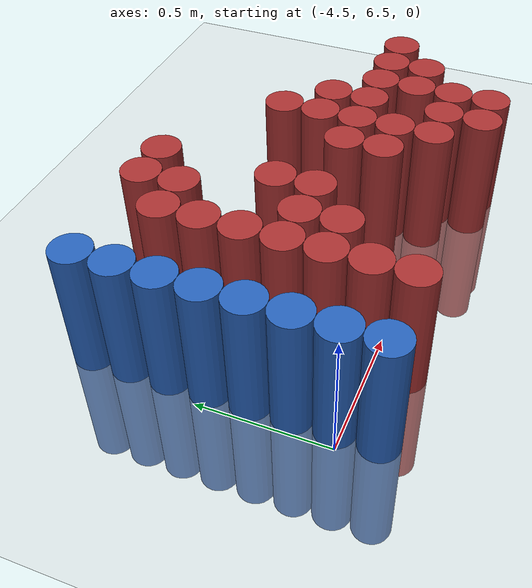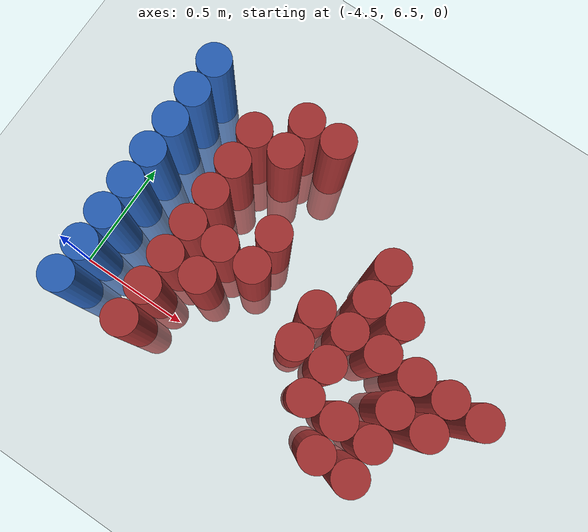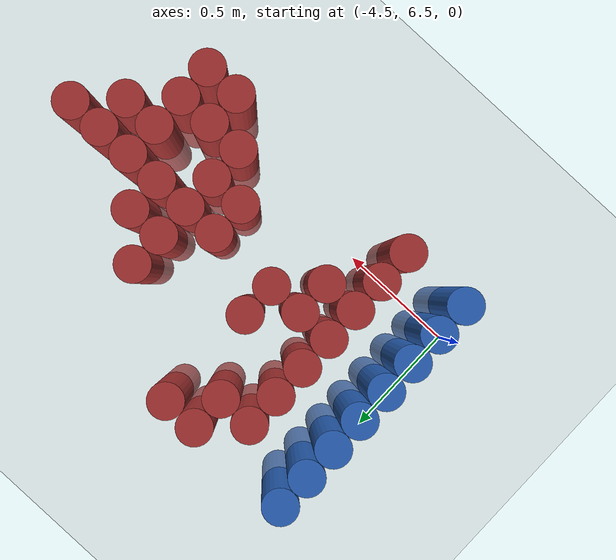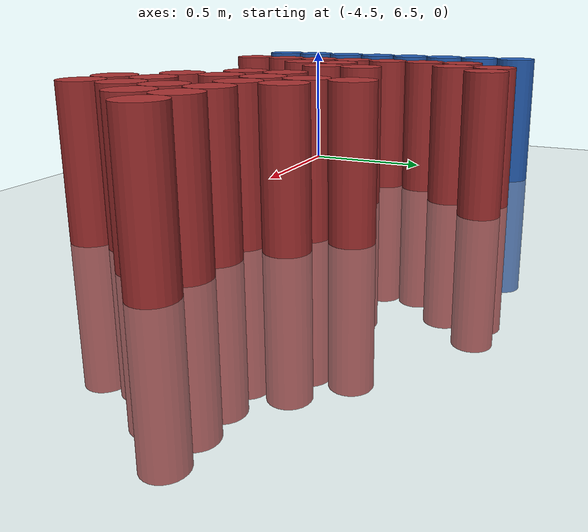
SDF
<sdf version="1.6">
 <world name="default">
  <model name="ground_plane">
   <static>1</static>
   <link name="link">
    <collision name="collision">
     <geometry><plane><normal>0 0 1</normal><size>100 100</size></plane></geometry>
     <surface><friction><ode><mu>100</mu><mu2>50</mu2></ode></friction></surface>
    </collision>
    <visual name="visual">
     <cast_shadows>0</cast_shadows>
     <geometry><plane><normal>0 0 1</normal><size>100 100</size></plane></geometry>
     <material>
      <script><uri>file://media/materials/scripts/gazebo.material</uri><name>Gazebo/Grey</name></script>
     </material>
    </visual>
   </link>
  </model>
  <model name="unit_cylinder_104">
   <static>1</static>
   <pose>-4.425000 6.375000 0.000000 0.000000 0.000000 0.000000</pose>
   <link name="link">
    <inertial>
     <mass>1</mass>
     <inertia><ixx>0.145833</ixx><ixy>0</ixy><ixz>0</ixz><iyy>0.145833</iyy><iyz>0</iyz><izz>0.125</izz></inertia>
    </inertial>
    <collision name="collision">
     <geometry><cylinder><radius>0.075000</radius><length>1</length></cylinder></geometry>
    </collision>
    <visual name="visual">
     <geometry><cylinder><radius>0.075000</radius><length>1</length></cylinder></geometry>
     <material>
      <ambient>0.152000 0.379000 0.720000 1</ambient>
      <diffuse>0.152000 0.379000 0.720000 1</diffuse>
     </material>
     <material>
      <script><name>Gazebo/Grey</name><uri>file://media/materials/scripts/gazebo.material</uri></script>
     </material>
    </visual>
    <sensor name="sensor_contact" type="contact"><contact><collision>collision</collision></contact></sensor>
   </link>
   <plugin filename="gz-sim-touchplugin-system" name="gz::sim::systems::TouchPlugin">
    <target>robot</target>
    <namespace>robot</namespace>
    <time>0.001</time>
    <enabled>true</enabled>
   </plugin>
  </model>
  <model name="unit_cylinder_105">
   <static>1</static>
   <pose>-4.425000 6.525000 0.000000 0.000000 0.000000 0.000000</pose>
   <link name="link">
    <inertial>
     <mass>1</mass>
     <inertia><ixx>0.145833</ixx><ixy>0</ixy><ixz>0</ixz><iyy>0.145833</iyy><iyz>0</iyz><izz>0.125</izz></inertia>
    </inertial>
    <collision name="collision">
     <geometry><cylinder><radius>0.075000</radius><length>1</length></cylinder></geometry>
    </collision>
    <visual name="visual">
     <geometry><cylinder><radius>0.075000</radius><length>1</length></cylinder></geometry>
     <material>
      <ambient>0.152000 0.379000 0.720000 1</ambient>
      <diffuse>0.152000 0.379000 0.720000 1</diffuse>
     </material>
     <material>
      <script><name>Gazebo/Grey</name><uri>file://media/materials/scripts/gazebo.material</uri></script>
     </material>
    </visual>
    <sensor name="sensor_contact" type="contact"><contact><collision>collision</collision></contact></sensor>
   </link>
   <plugin filename="gz-sim-touchplugin-system" name="gz::sim::systems::TouchPlugin">
    <target>robot</target>
    <namespace>robot</namespace>
    <time>0.001</time>
    <enabled>true</enabled>
   </plugin>
  </model>
  <model name="unit_cylinder_106">
   <static>1</static>
   <pose>-4.425000 6.675000 0.000000 0.000000 0.000000 0.000000</pose>
   <link name="link">
    <inertial>
     <mass>1</mass>
     <inertia><ixx>0.145833</ixx><ixy>0</ixy><ixz>0</ixz><iyy>0.145833</iyy><iyz>0</iyz><izz>0.125</izz></inertia>
    </inertial>
    <collision name="collision">
     <geometry><cylinder><radius>0.075000</radius><length>1</length></cylinder></geometry>
    </collision>
    <visual name="visual">
     <geometry><cylinder><radius>0.075000</radius><length>1</length></cylinder></geometry>
     <material>
      <ambient>0.152000 0.379000 0.720000 1</ambient>
      <diffuse>0.152000 0.379000 0.720000 1</diffuse>
     </material>
     <material>
      <script><name>Gazebo/Grey</name><uri>file://media/materials/scripts/gazebo.material</uri></script>
     </material>
    </visual>
    <sensor name="sensor_contact" type="contact"><contact><collision>collision</collision></contact></sensor>
   </link>
   <plugin filename="gz-sim-touchplugin-system" name="gz::sim::systems::TouchPlugin">
    <target>robot</target>
    <namespace>robot</namespace>
    <time>0.001</time>
    <enabled>true</enabled>
   </plugin>
  </model>
  <model name="unit_cylinder_107">
   <static>1</static>
   <pose>-4.425000 6.825000 0.000000 0.000000 0.000000 0.000000</pose>
   <link name="link">
    <inertial>
     <mass>1</mass>
     <inertia><ixx>0.145833</ixx><ixy>0</ixy><ixz>0</ixz><iyy>0.145833</iyy><iyz>0</iyz><izz>0.125</izz></inertia>
    </inertial>
    <collision name="collision">
     <geometry><cylinder><radius>0.075000</radius><length>1</length></cylinder></geometry>
    </collision>
    <visual name="visual">
     <geometry><cylinder><radius>0.075000</radius><length>1</length></cylinder></geometry>
     <material>
      <ambient>0.152000 0.379000 0.720000 1</ambient>
      <diffuse>0.152000 0.379000 0.720000 1</diffuse>
     </material>
     <material>
      <script><name>Gazebo/Grey</name><uri>file://media/materials/scripts/gazebo.material</uri></script>
     </material>
    </visual>
    <sensor name="sensor_contact" type="contact"><contact><collision>collision</collision></contact></sensor>
   </link>
   <plugin filename="gz-sim-touchplugin-system" name="gz::sim::systems::TouchPlugin">
    <target>robot</target>
    <namespace>robot</namespace>
    <time>0.001</time>
    <enabled>true</enabled>
   </plugin>
  </model>
  <model name="unit_cylinder_108">
   <static>1</static>
   <pose>-4.425000 6.975000 0.000000 0.000000 0.000000 0.000000</pose>
   <link name="link">
    <inertial>
     <mass>1</mass>
     <inertia><ixx>0.145833</ixx><ixy>0</ixy><ixz>0</ixz><iyy>0.145833</iyy><iyz>0</iyz><izz>0.125</izz></inertia>
    </inertial>
    <collision name="collision">
     <geometry><cylinder><radius>0.075000</radius><length>1</length></cylinder></geometry>
    </collision>
    <visual name="visual">
     <geometry><cylinder><radius>0.075000</radius><length>1</length></cylinder></geometry>
     <material>
      <ambient>0.152000 0.379000 0.720000 1</ambient>
      <diffuse>0.152000 0.379000 0.720000 1</diffuse>
     </material>
     <material>
      <script><name>Gazebo/Grey</name><uri>file://media/materials/scripts/gazebo.material</uri></script>
     </material>
    </visual>
    <sensor name="sensor_contact" type="contact"><contact><collision>collision</collision></contact></sensor>
   </link>
   <plugin filename="gz-sim-touchplugin-system" name="gz::sim::systems::TouchPlugin">
    <target>robot</target>
    <namespace>robot</namespace>
    <time>0.001</time>
    <enabled>true</enabled>
   </plugin>
  </model>
  <model name="unit_cylinder_109">
   <static>1</static>
   <pose>-4.425000 7.125000 0.000000 0.000000 0.000000 0.000000</pose>
   <link name="link">
    <inertial>
     <mass>1</mass>
     <inertia><ixx>0.145833</ixx><ixy>0</ixy><ixz>0</ixz><iyy>0.145833</iyy><iyz>0</iyz><izz>0.125</izz></inertia>
    </inertial>
    <collision name="collision">
     <geometry><cylinder><radius>0.075000</radius><length>1</length></cylinder></geometry>
    </collision>
    <visual name="visual">
     <geometry><cylinder><radius>0.075000</radius><length>1</length></cylinder></geometry>
     <material>
      <ambient>0.152000 0.379000 0.720000 1</ambient>
      <diffuse>0.152000 0.379000 0.720000 1</diffuse>
     </material>
     <material>
      <script><name>Gazebo/Grey</name><uri>file://media/materials/scripts/gazebo.material</uri></script>
     </material>
    </visual>
    <sensor name="sensor_contact" type="contact"><contact><collision>collision</collision></contact></sensor>
   </link>
   <plugin filename="gz-sim-touchplugin-system" name="gz::sim::systems::TouchPlugin">
    <target>robot</target>
    <namespace>robot</namespace>
    <time>0.001</time>
    <enabled>true</enabled>
   </plugin>
  </model>
  <model name="unit_cylinder_110">
   <static>1</static>
   <pose>-4.425000 7.275000 0.000000 0.000000 0.000000 0.000000</pose>
   <link name="link">
    <inertial>
     <mass>1</mass>
     <inertia><ixx>0.145833</ixx><ixy>0</ixy><ixz>0</ixz><iyy>0.145833</iyy><iyz>0</iyz><izz>0.125</izz></inertia>
    </inertial>
    <collision name="collision">
     <geometry><cylinder><radius>0.075000</radius><length>1</length></cylinder></geometry>
    </collision>
    <visual name="visual">
     <geometry><cylinder><radius>0.075000</radius><length>1</length></cylinder></geometry>
     <material>
      <ambient>0.152000 0.379000 0.720000 1</ambient>
      <diffuse>0.152000 0.379000 0.720000 1</diffuse>
     </material>
     <material>
      <script><name>Gazebo/Grey</name><uri>file://media/materials/scripts/gazebo.material</uri></script>
     </material>
    </visual>
    <sensor name="sensor_contact" type="contact"><contact><collision>collision</collision></contact></sensor>
   </link>
   <plugin filename="gz-sim-touchplugin-system" name="gz::sim::systems::TouchPlugin">
    <target>robot</target>
    <namespace>robot</namespace>
    <time>0.001</time>
    <enabled>true</enabled>
   </plugin>
  </model>
  <model name="unit_cylinder_111">
   <static>1</static>
   <pose>-4.425000 7.425000 0.000000 0.000000 0.000000 0.000000</pose>
   <link name="link">
    <inertial>
     <mass>1</mass>
     <inertia><ixx>0.145833</ixx><ixy>0</ixy><ixz>0</ixz><iyy>0.145833</iyy><iyz>0</iyz><izz>0.125</izz></inertia>
    </inertial>
    <collision name="collision">
     <geometry><cylinder><radius>0.075000</radius><length>1</length></cylinder></geometry>
    </collision>
    <visual name="visual">
     <geometry><cylinder><radius>0.075000</radius><length>1</length></cylinder></geometry>
     <material>
      <ambient>0.152000 0.379000 0.720000 1</ambient>
      <diffuse>0.152000 0.379000 0.720000 1</diffuse>
     </material>
     <material>
      <script><name>Gazebo/Grey</name><uri>file://media/materials/scripts/gazebo.material</uri></script>
     </material>
    </visual>
    <sensor name="sensor_contact" type="contact"><contact><collision>collision</collision></contact></sensor>
   </link>
   <plugin filename="gz-sim-touchplugin-system" name="gz::sim::systems::TouchPlugin">
    <target>robot</target>
    <namespace>robot</namespace>
    <time>0.001</time>
    <enabled>true</enabled>
   </plugin>
  </model>
  <model name="unit_cylinder_138">
   <static>1</static>
   <pose>-4.125000 6.375000 0.000000 0.000000 0.000000 0.000000</pose>
   <link name="link">
    <inertial>
     <mass>1</mass>
     <inertia><ixx>0.145833</ixx><ixy>0</ixy><ixz>0</ixz><iyy>0.145833</iyy><iyz>0</iyz><izz>0.125</izz></inertia>
    </inertial>
    <collision name="collision">
     <geometry><cylinder><radius>0.075000</radius><length>1</length></cylinder></geometry>
    </collision>
    <visual name="visual">
     <geometry><cylinder><radius>0.075000</radius><length>1</length></cylinder></geometry>
     <material>
      <ambient>0.648000 0.192000 0.192000 1</ambient>
      <diffuse>0.648000 0.192000 0.192000 1</diffuse>
     </material>
     <material>
      <script><name>Gazebo/Grey</name><uri>file://media/materials/scripts/gazebo.material</uri></script>
     </material>
    </visual>
    <sensor name="sensor_contact" type="contact"><contact><collision>collision</collision></contact></sensor>
   </link>
   <plugin filename="gz-sim-touchplugin-system" name="gz::sim::systems::TouchPlugin">
    <target>robot</target>
    <namespace>robot</namespace>
    <time>0.001</time>
    <enabled>true</enabled>
   </plugin>
  </model>
  <model name="unit_cylinder_139">
   <static>1</static>
   <pose>-4.125000 6.525000 0.000000 0.000000 0.000000 0.000000</pose>
   <link name="link">
    <inertial>
     <mass>1</mass>
     <inertia><ixx>0.145833</ixx><ixy>0</ixy><ixz>0</ixz><iyy>0.145833</iyy><iyz>0</iyz><izz>0.125</izz></inertia>
    </inertial>
    <collision name="collision">
     <geometry><cylinder><radius>0.075000</radius><length>1</length></cylinder></geometry>
    </collision>
    <visual name="visual">
     <geometry><cylinder><radius>0.075000</radius><length>1</length></cylinder></geometry>
     <material>
      <ambient>0.648000 0.192000 0.192000 1</ambient>
      <diffuse>0.648000 0.192000 0.192000 1</diffuse>
     </material>
     <material>
      <script><name>Gazebo/Grey</name><uri>file://media/materials/scripts/gazebo.material</uri></script>
     </material>
    </visual>
    <sensor name="sensor_contact" type="contact"><contact><collision>collision</collision></contact></sensor>
   </link>
   <plugin filename="gz-sim-touchplugin-system" name="gz::sim::systems::TouchPlugin">
    <target>robot</target>
    <namespace>robot</namespace>
    <time>0.001</time>
    <enabled>true</enabled>
   </plugin>
  </model>
  <model name="unit_cylinder_140">
   <static>1</static>
   <pose>-4.125000 6.675000 0.000000 0.000000 0.000000 0.000000</pose>
   <link name="link">
    <inertial>
     <mass>1</mass>
     <inertia><ixx>0.145833</ixx><ixy>0</ixy><ixz>0</ixz><iyy>0.145833</iyy><iyz>0</iyz><izz>0.125</izz></inertia>
    </inertial>
    <collision name="collision">
     <geometry><cylinder><radius>0.075000</radius><length>1</length></cylinder></geometry>
    </collision>
    <visual name="visual">
     <geometry><cylinder><radius>0.075000</radius><length>1</length></cylinder></geometry>
     <material>
      <ambient>0.648000 0.192000 0.192000 1</ambient>
      <diffuse>0.648000 0.192000 0.192000 1</diffuse>
     </material>
     <material>
      <script><name>Gazebo/Grey</name><uri>file://media/materials/scripts/gazebo.material</uri></script>
     </material>
    </visual>
    <sensor name="sensor_contact" type="contact"><contact><collision>collision</collision></contact></sensor>
   </link>
   <plugin filename="gz-sim-touchplugin-system" name="gz::sim::systems::TouchPlugin">
    <target>robot</target>
    <namespace>robot</namespace>
    <time>0.001</time>
    <enabled>true</enabled>
   </plugin>
  </model>
  <model name="unit_cylinder_141">
   <static>1</static>
   <pose>-4.125000 6.825000 0.000000 0.000000 0.000000 0.000000</pose>
   <link name="link">
    <inertial>
     <mass>1</mass>
     <inertia><ixx>0.145833</ixx><ixy>0</ixy><ixz>0</ixz><iyy>0.145833</iyy><iyz>0</iyz><izz>0.125</izz></inertia>
    </inertial>
    <collision name="collision">
     <geometry><cylinder><radius>0.075000</radius><length>1</length></cylinder></geometry>
    </collision>
    <visual name="visual">
     <geometry><cylinder><radius>0.075000</radius><length>1</length></cylinder></geometry>
     <material>
      <ambient>0.648000 0.192000 0.192000 1</ambient>
      <diffuse>0.648000 0.192000 0.192000 1</diffuse>
     </material>
     <material>
      <script><name>Gazebo/Grey</name><uri>file://media/materials/scripts/gazebo.material</uri></script>
     </material>
    </visual>
    <sensor name="sensor_contact" type="contact"><contact><collision>collision</collision></contact></sensor>
   </link>
   <plugin filename="gz-sim-touchplugin-system" name="gz::sim::systems::TouchPlugin">
    <target>robot</target>
    <namespace>robot</namespace>
    <time>0.001</time>
    <enabled>true</enabled>
   </plugin>
  </model>
  <model name="unit_cylinder_142">
   <static>1</static>
   <pose>-4.125000 6.975000 0.000000 0.000000 0.000000 0.000000</pose>
   <link name="link">
    <inertial>
     <mass>1</mass>
     <inertia><ixx>0.145833</ixx><ixy>0</ixy><ixz>0</ixz><iyy>0.145833</iyy><iyz>0</iyz><izz>0.125</izz></inertia>
    </inertial>
    <collision name="collision">
     <geometry><cylinder><radius>0.075000</radius><length>1</length></cylinder></geometry>
    </collision>
    <visual name="visual">
     <geometry><cylinder><radius>0.075000</radius><length>1</length></cylinder></geometry>
     <material>
      <ambient>0.648000 0.192000 0.192000 1</ambient>
      <diffuse>0.648000 0.192000 0.192000 1</diffuse>
     </material>
     <material>
      <script><name>Gazebo/Grey</name><uri>file://media/materials/scripts/gazebo.material</uri></script>
     </material>
    </visual>
    <sensor name="sensor_contact" type="contact"><contact><collision>collision</collision></contact></sensor>
   </link>
   <plugin filename="gz-sim-touchplugin-system" name="gz::sim::systems::TouchPlugin">
    <target>robot</target>
    <namespace>robot</namespace>
    <time>0.001</time>
    <enabled>true</enabled>
   </plugin>
  </model>
  <model name="unit_cylinder_143">
   <static>1</static>
   <pose>-4.125000 7.125000 0.000000 0.000000 0.000000 0.000000</pose>
   <link name="link">
    <inertial>
     <mass>1</mass>
     <inertia><ixx>0.145833</ixx><ixy>0</ixy><ixz>0</ixz><iyy>0.145833</iyy><iyz>0</iyz><izz>0.125</izz></inertia>
    </inertial>
    <collision name="collision">
     <geometry><cylinder><radius>0.075000</radius><length>1</length></cylinder></geometry>
    </collision>
    <visual name="visual">
     <geometry><cylinder><radius>0.075000</radius><length>1</length></cylinder></geometry>
     <material>
      <ambient>0.648000 0.192000 0.192000 1</ambient>
      <diffuse>0.648000 0.192000 0.192000 1</diffuse>
     </material>
     <material>
      <script><name>Gazebo/Grey</name><uri>file://media/materials/scripts/gazebo.material</uri></script>
     </material>
    </visual>
    <sensor name="sensor_contact" type="contact"><contact><collision>collision</collision></contact></sensor>
   </link>
   <plugin filename="gz-sim-touchplugin-system" name="gz::sim::systems::TouchPlugin">
    <target>robot</target>
    <namespace>robot</namespace>
    <time>0.001</time>
    <enabled>true</enabled>
   </plugin>
  </model>
  <model name="unit_cylinder_144">
   <static>1</static>
   <pose>-4.125000 7.275000 0.000000 0.000000 0.000000 0.000000</pose>
   <link name="link">
    <inertial>
     <mass>1</mass>
     <inertia><ixx>0.145833</ixx><ixy>0</ixy><ixz>0</ixz><iyy>0.145833</iyy><iyz>0</iyz><izz>0.125</izz></inertia>
    </inertial>
    <collision name="collision">
     <geometry><cylinder><radius>0.075000</radius><length>1</length></cylinder></geometry>
    </collision>
    <visual name="visual">
     <geometry><cylinder><radius>0.075000</radius><length>1</length></cylinder></geometry>
     <material>
      <ambient>0.648000 0.192000 0.192000 1</ambient>
      <diffuse>0.648000 0.192000 0.192000 1</diffuse>
     </material>
     <material>
      <script><name>Gazebo/Grey</name><uri>file://media/materials/scripts/gazebo.material</uri></script>
     </material>
    </visual>
    <sensor name="sensor_contact" type="contact"><contact><collision>collision</collision></contact></sensor>
   </link>
   <plugin filename="gz-sim-touchplugin-system" name="gz::sim::systems::TouchPlugin">
    <target>robot</target>
    <namespace>robot</namespace>
    <time>0.001</time>
    <enabled>true</enabled>
   </plugin>
  </model>
  <model name="unit_cylinder_152">
   <static>1</static>
   <pose>-3.975000 6.675000 0.000000 0.000000 0.000000 0.000000</pose>
   <link name="link">
    <inertial>
     <mass>1</mass>
     <inertia><ixx>0.145833</ixx><ixy>0</ixy><ixz>0</ixz><iyy>0.145833</iyy><iyz>0</iyz><izz>0.125</izz></inertia>
    </inertial>
    <collision name="collision">
     <geometry><cylinder><radius>0.075000</radius><length>1</length></cylinder></geometry>
    </collision>
    <visual name="visual">
     <geometry><cylinder><radius>0.075000</radius><length>1</length></cylinder></geometry>
     <material>
      <ambient>0.648000 0.192000 0.192000 1</ambient>
      <diffuse>0.648000 0.192000 0.192000 1</diffuse>
     </material>
     <material>
      <script><name>Gazebo/Grey</name><uri>file://media/materials/scripts/gazebo.material</uri></script>
     </material>
    </visual>
    <sensor name="sensor_contact" type="contact"><contact><collision>collision</collision></contact></sensor>
   </link>
   <plugin filename="gz-sim-touchplugin-system" name="gz::sim::systems::TouchPlugin">
    <target>robot</target>
    <namespace>robot</namespace>
    <time>0.001</time>
    <enabled>true</enabled>
   </plugin>
  </model>
  <model name="unit_cylinder_153">
   <static>1</static>
   <pose>-3.975000 6.825000 0.000000 0.000000 0.000000 0.000000</pose>
   <link name="link">
    <inertial>
     <mass>1</mass>
     <inertia><ixx>0.145833</ixx><ixy>0</ixy><ixz>0</ixz><iyy>0.145833</iyy><iyz>0</iyz><izz>0.125</izz></inertia>
    </inertial>
    <collision name="collision">
     <geometry><cylinder><radius>0.075000</radius><length>1</length></cylinder></geometry>
    </collision>
    <visual name="visual">
     <geometry><cylinder><radius>0.075000</radius><length>1</length></cylinder></geometry>
     <material>
      <ambient>0.648000 0.192000 0.192000 1</ambient>
      <diffuse>0.648000 0.192000 0.192000 1</diffuse>
     </material>
     <material>
      <script><name>Gazebo/Grey</name><uri>file://media/materials/scripts/gazebo.material</uri></script>
     </material>
    </visual>
    <sensor name="sensor_contact" type="contact"><contact><collision>collision</collision></contact></sensor>
   </link>
   <plugin filename="gz-sim-touchplugin-system" name="gz::sim::systems::TouchPlugin">
    <target>robot</target>
    <namespace>robot</namespace>
    <time>0.001</time>
    <enabled>true</enabled>
   </plugin>
  </model>
  <model name="unit_cylinder_154">
   <static>1</static>
   <pose>-3.975000 7.275000 0.000000 0.000000 0.000000 0.000000</pose>
   <link name="link">
    <inertial>
     <mass>1</mass>
     <inertia><ixx>0.145833</ixx><ixy>0</ixy><ixz>0</ixz><iyy>0.145833</iyy><iyz>0</iyz><izz>0.125</izz></inertia>
    </inertial>
    <collision name="collision">
     <geometry><cylinder><radius>0.075000</radius><length>1</length></cylinder></geometry>
    </collision>
    <visual name="visual">
     <geometry><cylinder><radius>0.075000</radius><length>1</length></cylinder></geometry>
     <material>
      <ambient>0.648000 0.192000 0.192000 1</ambient>
      <diffuse>0.648000 0.192000 0.192000 1</diffuse>
     </material>
     <material>
      <script><name>Gazebo/Grey</name><uri>file://media/materials/scripts/gazebo.material</uri></script>
     </material>
    </visual>
    <sensor name="sensor_contact" type="contact"><contact><collision>collision</collision></contact></sensor>
   </link>
   <plugin filename="gz-sim-touchplugin-system" name="gz::sim::systems::TouchPlugin">
    <target>robot</target>
    <namespace>robot</namespace>
    <time>0.001</time>
    <enabled>true</enabled>
   </plugin>
  </model>
  <model name="unit_cylinder_155">
   <static>1</static>
   <pose>-3.975000 7.425000 0.000000 0.000000 0.000000 0.000000</pose>
   <link name="link">
    <inertial>
     <mass>1</mass>
     <inertia><ixx>0.145833</ixx><ixy>0</ixy><ixz>0</ixz><iyy>0.145833</iyy><iyz>0</iyz><izz>0.125</izz></inertia>
    </inertial>
    <collision name="collision">
     <geometry><cylinder><radius>0.075000</radius><length>1</length></cylinder></geometry>
    </collision>
    <visual name="visual">
     <geometry><cylinder><radius>0.075000</radius><length>1</length></cylinder></geometry>
     <material>
      <ambient>0.648000 0.192000 0.192000 1</ambient>
      <diffuse>0.648000 0.192000 0.192000 1</diffuse>
     </material>
     <material>
      <script><name>Gazebo/Grey</name><uri>file://media/materials/scripts/gazebo.material</uri></script>
     </material>
    </visual>
    <sensor name="sensor_contact" type="contact"><contact><collision>collision</collision></contact></sensor>
   </link>
   <plugin filename="gz-sim-touchplugin-system" name="gz::sim::systems::TouchPlugin">
    <target>robot</target>
    <namespace>robot</namespace>
    <time>0.001</time>
    <enabled>true</enabled>
   </plugin>
  </model>
  <model name="unit_cylinder_162">
   <static>1</static>
   <pose>-3.825000 6.825000 0.000000 0.000000 0.000000 0.000000</pose>
   <link name="link">
    <inertial>
     <mass>1</mass>
     <inertia><ixx>0.145833</ixx><ixy>0</ixy><ixz>0</ixz><iyy>0.145833</iyy><iyz>0</iyz><izz>0.125</izz></inertia>
    </inertial>
    <collision name="collision">
     <geometry><cylinder><radius>0.075000</radius><length>1</length></cylinder></geometry>
    </collision>
    <visual name="visual">
     <geometry><cylinder><radius>0.075000</radius><length>1</length></cylinder></geometry>
     <material>
      <ambient>0.648000 0.192000 0.192000 1</ambient>
      <diffuse>0.648000 0.192000 0.192000 1</diffuse>
     </material>
     <material>
      <script><name>Gazebo/Grey</name><uri>file://media/materials/scripts/gazebo.material</uri></script>
     </material>
    </visual>
    <sensor name="sensor_contact" type="contact"><contact><collision>collision</collision></contact></sensor>
   </link>
   <plugin filename="gz-sim-touchplugin-system" name="gz::sim::systems::TouchPlugin">
    <target>robot</target>
    <namespace>robot</namespace>
    <time>0.001</time>
    <enabled>true</enabled>
   </plugin>
  </model>
  <model name="unit_cylinder_163">
   <static>1</static>
   <pose>-3.825000 6.975000 0.000000 0.000000 0.000000 0.000000</pose>
   <link name="link">
    <inertial>
     <mass>1</mass>
     <inertia><ixx>0.145833</ixx><ixy>0</ixy><ixz>0</ixz><iyy>0.145833</iyy><iyz>0</iyz><izz>0.125</izz></inertia>
    </inertial>
    <collision name="collision">
     <geometry><cylinder><radius>0.075000</radius><length>1</length></cylinder></geometry>
    </collision>
    <visual name="visual">
     <geometry><cylinder><radius>0.075000</radius><length>1</length></cylinder></geometry>
     <material>
      <ambient>0.648000 0.192000 0.192000 1</ambient>
      <diffuse>0.648000 0.192000 0.192000 1</diffuse>
     </material>
     <material>
      <script><name>Gazebo/Grey</name><uri>file://media/materials/scripts/gazebo.material</uri></script>
     </material>
    </visual>
    <sensor name="sensor_contact" type="contact"><contact><collision>collision</collision></contact></sensor>
   </link>
   <plugin filename="gz-sim-touchplugin-system" name="gz::sim::systems::TouchPlugin">
    <target>robot</target>
    <namespace>robot</namespace>
    <time>0.001</time>
    <enabled>true</enabled>
   </plugin>
  </model>
  <model name="unit_cylinder_164">
   <static>1</static>
   <pose>-3.825000 7.425000 0.000000 0.000000 0.000000 0.000000</pose>
   <link name="link">
    <inertial>
     <mass>1</mass>
     <inertia><ixx>0.145833</ixx><ixy>0</ixy><ixz>0</ixz><iyy>0.145833</iyy><iyz>0</iyz><izz>0.125</izz></inertia>
    </inertial>
    <collision name="collision">
     <geometry><cylinder><radius>0.075000</radius><length>1</length></cylinder></geometry>
    </collision>
    <visual name="visual">
     <geometry><cylinder><radius>0.075000</radius><length>1</length></cylinder></geometry>
     <material>
      <ambient>0.648000 0.192000 0.192000 1</ambient>
      <diffuse>0.648000 0.192000 0.192000 1</diffuse>
     </material>
     <material>
      <script><name>Gazebo/Grey</name><uri>file://media/materials/scripts/gazebo.material</uri></script>
     </material>
    </visual>
    <sensor name="sensor_contact" type="contact"><contact><collision>collision</collision></contact></sensor>
   </link>
   <plugin filename="gz-sim-touchplugin-system" name="gz::sim::systems::TouchPlugin">
    <target>robot</target>
    <namespace>robot</namespace>
    <time>0.001</time>
    <enabled>true</enabled>
   </plugin>
  </model>
  <model name="unit_cylinder_179">
   <static>1</static>
   <pose>-3.525000 6.675000 0.000000 0.000000 0.000000 0.000000</pose>
   <link name="link">
    <inertial>
     <mass>1</mass>
     <inertia><ixx>0.145833</ixx><ixy>0</ixy><ixz>0</ixz><iyy>0.145833</iyy><iyz>0</iyz><izz>0.125</izz></inertia>
    </inertial>
    <collision name="collision">
     <geometry><cylinder><radius>0.075000</radius><length>1</length></cylinder></geometry>
    </collision>
    <visual name="visual">
     <geometry><cylinder><radius>0.075000</radius><length>1</length></cylinder></geometry>
     <material>
      <ambient>0.648000 0.192000 0.192000 1</ambient>
      <diffuse>0.648000 0.192000 0.192000 1</diffuse>
     </material>
     <material>
      <script><name>Gazebo/Grey</name><uri>file://media/materials/scripts/gazebo.material</uri></script>
     </material>
    </visual>
    <sensor name="sensor_contact" type="contact"><contact><collision>collision</collision></contact></sensor>
   </link>
   <plugin filename="gz-sim-touchplugin-system" name="gz::sim::systems::TouchPlugin">
    <target>robot</target>
    <namespace>robot</namespace>
    <time>0.001</time>
    <enabled>true</enabled>
   </plugin>
  </model>
  <model name="unit_cylinder_180">
   <static>1</static>
   <pose>-3.525000 6.825000 0.000000 0.000000 0.000000 0.000000</pose>
   <link name="link">
    <inertial>
     <mass>1</mass>
     <inertia><ixx>0.145833</ixx><ixy>0</ixy><ixz>0</ixz><iyy>0.145833</iyy><iyz>0</iyz><izz>0.125</izz></inertia>
    </inertial>
    <collision name="collision">
     <geometry><cylinder><radius>0.075000</radius><length>1</length></cylinder></geometry>
    </collision>
    <visual name="visual">
     <geometry><cylinder><radius>0.075000</radius><length>1</length></cylinder></geometry>
     <material>
      <ambient>0.648000 0.192000 0.192000 1</ambient>
      <diffuse>0.648000 0.192000 0.192000 1</diffuse>
     </material>
     <material>
      <script><name>Gazebo/Grey</name><uri>file://media/materials/scripts/gazebo.material</uri></script>
     </material>
    </visual>
    <sensor name="sensor_contact" type="contact"><contact><collision>collision</collision></contact></sensor>
   </link>
   <plugin filename="gz-sim-touchplugin-system" name="gz::sim::systems::TouchPlugin">
    <target>robot</target>
    <namespace>robot</namespace>
    <time>0.001</time>
    <enabled>true</enabled>
   </plugin>
  </model>
  <model name="unit_cylinder_184">
   <static>1</static>
   <pose>-3.375000 6.525000 0.000000 0.000000 0.000000 0.000000</pose>
   <link name="link">
    <inertial>
     <mass>1</mass>
     <inertia><ixx>0.145833</ixx><ixy>0</ixy><ixz>0</ixz><iyy>0.145833</iyy><iyz>0</iyz><izz>0.125</izz></inertia>
    </inertial>
    <collision name="collision">
     <geometry><cylinder><radius>0.075000</radius><length>1</length></cylinder></geometry>
    </collision>
    <visual name="visual">
     <geometry><cylinder><radius>0.075000</radius><length>1</length></cylinder></geometry>
     <material>
      <ambient>0.648000 0.192000 0.192000 1</ambient>
      <diffuse>0.648000 0.192000 0.192000 1</diffuse>
     </material>
     <material>
      <script><name>Gazebo/Grey</name><uri>file://media/materials/scripts/gazebo.material</uri></script>
     </material>
    </visual>
    <sensor name="sensor_contact" type="contact"><contact><collision>collision</collision></contact></sensor>
   </link>
   <plugin filename="gz-sim-touchplugin-system" name="gz::sim::systems::TouchPlugin">
    <target>robot</target>
    <namespace>robot</namespace>
    <time>0.001</time>
    <enabled>true</enabled>
   </plugin>
  </model>
  <model name="unit_cylinder_185">
   <static>1</static>
   <pose>-3.375000 6.675000 0.000000 0.000000 0.000000 0.000000</pose>
   <link name="link">
    <inertial>
     <mass>1</mass>
     <inertia><ixx>0.145833</ixx><ixy>0</ixy><ixz>0</ixz><iyy>0.145833</iyy><iyz>0</iyz><izz>0.125</izz></inertia>
    </inertial>
    <collision name="collision">
     <geometry><cylinder><radius>0.075000</radius><length>1</length></cylinder></geometry>
    </collision>
    <visual name="visual">
     <geometry><cylinder><radius>0.075000</radius><length>1</length></cylinder></geometry>
     <material>
      <ambient>0.648000 0.192000 0.192000 1</ambient>
      <diffuse>0.648000 0.192000 0.192000 1</diffuse>
     </material>
     <material>
      <script><name>Gazebo/Grey</name><uri>file://media/materials/scripts/gazebo.material</uri></script>
     </material>
    </visual>
    <sensor name="sensor_contact" type="contact"><contact><collision>collision</collision></contact></sensor>
   </link>
   <plugin filename="gz-sim-touchplugin-system" name="gz::sim::systems::TouchPlugin">
    <target>robot</target>
    <namespace>robot</namespace>
    <time>0.001</time>
    <enabled>true</enabled>
   </plugin>
  </model>
  <model name="unit_cylinder_186">
   <static>1</static>
   <pose>-3.375000 6.825000 0.000000 0.000000 0.000000 0.000000</pose>
   <link name="link">
    <inertial>
     <mass>1</mass>
     <inertia><ixx>0.145833</ixx><ixy>0</ixy><ixz>0</ixz><iyy>0.145833</iyy><iyz>0</iyz><izz>0.125</izz></inertia>
    </inertial>
    <collision name="collision">
     <geometry><cylinder><radius>0.075000</radius><length>1</length></cylinder></geometry>
    </collision>
    <visual name="visual">
     <geometry><cylinder><radius>0.075000</radius><length>1</length></cylinder></geometry>
     <material>
      <ambient>0.648000 0.192000 0.192000 1</ambient>
      <diffuse>0.648000 0.192000 0.192000 1</diffuse>
     </material>
     <material>
      <script><name>Gazebo/Grey</name><uri>file://media/materials/scripts/gazebo.material</uri></script>
     </material>
    </visual>
    <sensor name="sensor_contact" type="contact"><contact><collision>collision</collision></contact></sensor>
   </link>
   <plugin filename="gz-sim-touchplugin-system" name="gz::sim::systems::TouchPlugin">
    <target>robot</target>
    <namespace>robot</namespace>
    <time>0.001</time>
    <enabled>true</enabled>
   </plugin>
  </model>
  <model name="unit_cylinder_187">
   <static>1</static>
   <pose>-3.375000 6.975000 0.000000 0.000000 0.000000 0.000000</pose>
   <link name="link">
    <inertial>
     <mass>1</mass>
     <inertia><ixx>0.145833</ixx><ixy>0</ixy><ixz>0</ixz><iyy>0.145833</iyy><iyz>0</iyz><izz>0.125</izz></inertia>
    </inertial>
    <collision name="collision">
     <geometry><cylinder><radius>0.075000</radius><length>1</length></cylinder></geometry>
    </collision>
    <visual name="visual">
     <geometry><cylinder><radius>0.075000</radius><length>1</length></cylinder></geometry>
     <material>
      <ambient>0.648000 0.192000 0.192000 1</ambient>
      <diffuse>0.648000 0.192000 0.192000 1</diffuse>
     </material>
     <material>
      <script><name>Gazebo/Grey</name><uri>file://media/materials/scripts/gazebo.material</uri></script>
     </material>
    </visual>
    <sensor name="sensor_contact" type="contact"><contact><collision>collision</collision></contact></sensor>
   </link>
   <plugin filename="gz-sim-touchplugin-system" name="gz::sim::systems::TouchPlugin">
    <target>robot</target>
    <namespace>robot</namespace>
    <time>0.001</time>
    <enabled>true</enabled>
   </plugin>
  </model>
  <model name="unit_cylinder_188">
   <static>1</static>
   <pose>-3.375000 7.125000 0.000000 0.000000 0.000000 0.000000</pose>
   <link name="link">
    <inertial>
     <mass>1</mass>
     <inertia><ixx>0.145833</ixx><ixy>0</ixy><ixz>0</ixz><iyy>0.145833</iyy><iyz>0</iyz><izz>0.125</izz></inertia>
    </inertial>
    <collision name="collision">
     <geometry><cylinder><radius>0.075000</radius><length>1</length></cylinder></geometry>
    </collision>
    <visual name="visual">
     <geometry><cylinder><radius>0.075000</radius><length>1</length></cylinder></geometry>
     <material>
      <ambient>0.648000 0.192000 0.192000 1</ambient>
      <diffuse>0.648000 0.192000 0.192000 1</diffuse>
     </material>
     <material>
      <script><name>Gazebo/Grey</name><uri>file://media/materials/scripts/gazebo.material</uri></script>
     </material>
    </visual>
    <sensor name="sensor_contact" type="contact"><contact><collision>collision</collision></contact></sensor>
   </link>
   <plugin filename="gz-sim-touchplugin-system" name="gz::sim::systems::TouchPlugin">
    <target>robot</target>
    <namespace>robot</namespace>
    <time>0.001</time>
    <enabled>true</enabled>
   </plugin>
  </model>
  <model name="unit_cylinder_191">
   <static>1</static>
   <pose>-3.225000 6.375000 0.000000 0.000000 0.000000 0.000000</pose>
   <link name="link">
    <inertial>
     <mass>1</mass>
     <inertia><ixx>0.145833</ixx><ixy>0</ixy><ixz>0</ixz><iyy>0.145833</iyy><iyz>0</iyz><izz>0.125</izz></inertia>
    </inertial>
    <collision name="collision">
     <geometry><cylinder><radius>0.075000</radius><length>1</length></cylinder></geometry>
    </collision>
    <visual name="visual">
     <geometry><cylinder><radius>0.075000</radius><length>1</length></cylinder></geometry>
     <material>
      <ambient>0.648000 0.192000 0.192000 1</ambient>
      <diffuse>0.648000 0.192000 0.192000 1</diffuse>
     </material>
     <material>
      <script><name>Gazebo/Grey</name><uri>file://media/materials/scripts/gazebo.material</uri></script>
     </material>
    </visual>
    <sensor name="sensor_contact" type="contact"><contact><collision>collision</collision></contact></sensor>
   </link>
   <plugin filename="gz-sim-touchplugin-system" name="gz::sim::systems::TouchPlugin">
    <target>robot</target>
    <namespace>robot</namespace>
    <time>0.001</time>
    <enabled>true</enabled>
   </plugin>
  </model>
  <model name="unit_cylinder_192">
   <static>1</static>
   <pose>-3.225000 6.525000 0.000000 0.000000 0.000000 0.000000</pose>
   <link name="link">
    <inertial>
     <mass>1</mass>
     <inertia><ixx>0.145833</ixx><ixy>0</ixy><ixz>0</ixz><iyy>0.145833</iyy><iyz>0</iyz><izz>0.125</izz></inertia>
    </inertial>
    <collision name="collision">
     <geometry><cylinder><radius>0.075000</radius><length>1</length></cylinder></geometry>
    </collision>
    <visual name="visual">
     <geometry><cylinder><radius>0.075000</radius><length>1</length></cylinder></geometry>
     <material>
      <ambient>0.648000 0.192000 0.192000 1</ambient>
      <diffuse>0.648000 0.192000 0.192000 1</diffuse>
     </material>
     <material>
      <script><name>Gazebo/Grey</name><uri>file://media/materials/scripts/gazebo.material</uri></script>
     </material>
    </visual>
    <sensor name="sensor_contact" type="contact"><contact><collision>collision</collision></contact></sensor>
   </link>
   <plugin filename="gz-sim-touchplugin-system" name="gz::sim::systems::TouchPlugin">
    <target>robot</target>
    <namespace>robot</namespace>
    <time>0.001</time>
    <enabled>true</enabled>
   </plugin>
  </model>
  <model name="unit_cylinder_193">
   <static>1</static>
   <pose>-3.225000 6.825000 0.000000 0.000000 0.000000 0.000000</pose>
   <link name="link">
    <inertial>
     <mass>1</mass>
     <inertia><ixx>0.145833</ixx><ixy>0</ixy><ixz>0</ixz><iyy>0.145833</iyy><iyz>0</iyz><izz>0.125</izz></inertia>
    </inertial>
    <collision name="collision">
     <geometry><cylinder><radius>0.075000</radius><length>1</length></cylinder></geometry>
    </collision>
    <visual name="visual">
     <geometry><cylinder><radius>0.075000</radius><length>1</length></cylinder></geometry>
     <material>
      <ambient>0.648000 0.192000 0.192000 1</ambient>
      <diffuse>0.648000 0.192000 0.192000 1</diffuse>
     </material>
     <material>
      <script><name>Gazebo/Grey</name><uri>file://media/materials/scripts/gazebo.material</uri></script>
     </material>
    </visual>
    <sensor name="sensor_contact" type="contact"><contact><collision>collision</collision></contact></sensor>
   </link>
   <plugin filename="gz-sim-touchplugin-system" name="gz::sim::systems::TouchPlugin">
    <target>robot</target>
    <namespace>robot</namespace>
    <time>0.001</time>
    <enabled>true</enabled>
   </plugin>
  </model>
  <model name="unit_cylinder_194">
   <static>1</static>
   <pose>-3.225000 6.975000 0.000000 0.000000 0.000000 0.000000</pose>
   <link name="link">
    <inertial>
     <mass>1</mass>
     <inertia><ixx>0.145833</ixx><ixy>0</ixy><ixz>0</ixz><iyy>0.145833</iyy><iyz>0</iyz><izz>0.125</izz></inertia>
    </inertial>
    <collision name="collision">
     <geometry><cylinder><radius>0.075000</radius><length>1</length></cylinder></geometry>
    </collision>
    <visual name="visual">
     <geometry><cylinder><radius>0.075000</radius><length>1</length></cylinder></geometry>
     <material>
      <ambient>0.648000 0.192000 0.192000 1</ambient>
      <diffuse>0.648000 0.192000 0.192000 1</diffuse>
     </material>
     <material>
      <script><name>Gazebo/Grey</name><uri>file://media/materials/scripts/gazebo.material</uri></script>
     </material>
    </visual>
    <sensor name="sensor_contact" type="contact"><contact><collision>collision</collision></contact></sensor>
   </link>
   <plugin filename="gz-sim-touchplugin-system" name="gz::sim::systems::TouchPlugin">
    <target>robot</target>
    <namespace>robot</namespace>
    <time>0.001</time>
    <enabled>true</enabled>
   </plugin>
  </model>
  <model name="unit_cylinder_197">
   <static>1</static>
   <pose>-3.075000 6.375000 0.000000 0.000000 0.000000 0.000000</pose>
   <link name="link">
    <inertial>
     <mass>1</mass>
     <inertia><ixx>0.145833</ixx><ixy>0</ixy><ixz>0</ixz><iyy>0.145833</iyy><iyz>0</iyz><izz>0.125</izz></inertia>
    </inertial>
    <collision name="collision">
     <geometry><cylinder><radius>0.075000</radius><length>1</length></cylinder></geometry>
    </collision>
    <visual name="visual">
     <geometry><cylinder><radius>0.075000</radius><length>1</length></cylinder></geometry>
     <material>
      <ambient>0.648000 0.192000 0.192000 1</ambient>
      <diffuse>0.648000 0.192000 0.192000 1</diffuse>
     </material>
     <material>
      <script><name>Gazebo/Grey</name><uri>file://media/materials/scripts/gazebo.material</uri></script>
     </material>
    </visual>
    <sensor name="sensor_contact" type="contact"><contact><collision>collision</collision></contact></sensor>
   </link>
   <plugin filename="gz-sim-touchplugin-system" name="gz::sim::systems::TouchPlugin">
    <target>robot</target>
    <namespace>robot</namespace>
    <time>0.001</time>
    <enabled>true</enabled>
   </plugin>
  </model>
  <model name="unit_cylinder_198">
   <static>1</static>
   <pose>-3.075000 6.525000 0.000000 0.000000 0.000000 0.000000</pose>
   <link name="link">
    <inertial>
     <mass>1</mass>
     <inertia><ixx>0.145833</ixx><ixy>0</ixy><ixz>0</ixz><iyy>0.145833</iyy><iyz>0</iyz><izz>0.125</izz></inertia>
    </inertial>
    <collision name="collision">
     <geometry><cylinder><radius>0.075000</radius><length>1</length></cylinder></geometry>
    </collision>
    <visual name="visual">
     <geometry><cylinder><radius>0.075000</radius><length>1</length></cylinder></geometry>
     <material>
      <ambient>0.648000 0.192000 0.192000 1</ambient>
      <diffuse>0.648000 0.192000 0.192000 1</diffuse>
     </material>
     <material>
      <script><name>Gazebo/Grey</name><uri>file://media/materials/scripts/gazebo.material</uri></script>
     </material>
    </visual>
    <sensor name="sensor_contact" type="contact"><contact><collision>collision</collision></contact></sensor>
   </link>
   <plugin filename="gz-sim-touchplugin-system" name="gz::sim::systems::TouchPlugin">
    <target>robot</target>
    <namespace>robot</namespace>
    <time>0.001</time>
    <enabled>true</enabled>
   </plugin>
  </model>
  <model name="unit_cylinder_199">
   <static>1</static>
   <pose>-3.075000 6.675000 0.000000 0.000000 0.000000 0.000000</pose>
   <link name="link">
    <inertial>
     <mass>1</mass>
     <inertia><ixx>0.145833</ixx><ixy>0</ixy><ixz>0</ixz><iyy>0.145833</iyy><iyz>0</iyz><izz>0.125</izz></inertia>
    </inertial>
    <collision name="collision">
     <geometry><cylinder><radius>0.075000</radius><length>1</length></cylinder></geometry>
    </collision>
    <visual name="visual">
     <geometry><cylinder><radius>0.075000</radius><length>1</length></cylinder></geometry>
     <material>
      <ambient>0.648000 0.192000 0.192000 1</ambient>
      <diffuse>0.648000 0.192000 0.192000 1</diffuse>
     </material>
     <material>
      <script><name>Gazebo/Grey</name><uri>file://media/materials/scripts/gazebo.material</uri></script>
     </material>
    </visual>
    <sensor name="sensor_contact" type="contact"><contact><collision>collision</collision></contact></sensor>
   </link>
   <plugin filename="gz-sim-touchplugin-system" name="gz::sim::systems::TouchPlugin">
    <target>robot</target>
    <namespace>robot</namespace>
    <time>0.001</time>
    <enabled>true</enabled>
   </plugin>
  </model>
  <model name="unit_cylinder_200">
   <static>1</static>
   <pose>-3.075000 6.825000 0.000000 0.000000 0.000000 0.000000</pose>
   <link name="link">
    <inertial>
     <mass>1</mass>
     <inertia><ixx>0.145833</ixx><ixy>0</ixy><ixz>0</ixz><iyy>0.145833</iyy><iyz>0</iyz><izz>0.125</izz></inertia>
    </inertial>
    <collision name="collision">
     <geometry><cylinder><radius>0.075000</radius><length>1</length></cylinder></geometry>
    </collision>
    <visual name="visual">
     <geometry><cylinder><radius>0.075000</radius><length>1</length></cylinder></geometry>
     <material>
      <ambient>0.648000 0.192000 0.192000 1</ambient>
      <diffuse>0.648000 0.192000 0.192000 1</diffuse>
     </material>
     <material>
      <script><name>Gazebo/Grey</name><uri>file://media/materials/scripts/gazebo.material</uri></script>
     </material>
    </visual>
    <sensor name="sensor_contact" type="contact"><contact><collision>collision</collision></contact></sensor>
   </link>
   <plugin filename="gz-sim-touchplugin-system" name="gz::sim::systems::TouchPlugin">
    <target>robot</target>
    <namespace>robot</namespace>
    <time>0.001</time>
    <enabled>true</enabled>
   </plugin>
  </model>
  <model name="unit_cylinder_202">
   <static>1</static>
   <pose>-2.925000 6.675000 0.000000 0.000000 0.000000 0.000000</pose>
   <link name="link">
    <inertial>
     <mass>1</mass>
     <inertia><ixx>0.145833</ixx><ixy>0</ixy><ixz>0</ixz><iyy>0.145833</iyy><iyz>0</iyz><izz>0.125</izz></inertia>
    </inertial>
    <collision name="collision">
     <geometry><cylinder><radius>0.075000</radius><length>1</length></cylinder></geometry>
    </collision>
    <visual name="visual">
     <geometry><cylinder><radius>0.075000</radius><length>1</length></cylinder></geometry>
     <material>
      <ambient>0.648000 0.192000 0.192000 1</ambient>
      <diffuse>0.648000 0.192000 0.192000 1</diffuse>
     </material>
     <material>
      <script><name>Gazebo/Grey</name><uri>file://media/materials/scripts/gazebo.material</uri></script>
     </material>
    </visual>
    <sensor name="sensor_contact" type="contact"><contact><collision>collision</collision></contact></sensor>
   </link>
   <plugin filename="gz-sim-touchplugin-system" name="gz::sim::systems::TouchPlugin">
    <target>robot</target>
    <namespace>robot</namespace>
    <time>0.001</time>
    <enabled>true</enabled>
   </plugin>
  </model>
  <model name="unit_cylinder_203">
   <static>1</static>
   <pose>-2.925000 6.825000 0.000000 0.000000 0.000000 0.000000</pose>
   <link name="link">
    <inertial>
     <mass>1</mass>
     <inertia><ixx>0.145833</ixx><ixy>0</ixy><ixz>0</ixz><iyy>0.145833</iyy><iyz>0</iyz><izz>0.125</izz></inertia>
    </inertial>
    <collision name="collision">
     <geometry><cylinder><radius>0.075000</radius><length>1</length></cylinder></geometry>
    </collision>
    <visual name="visual">
     <geometry><cylinder><radius>0.075000</radius><length>1</length></cylinder></geometry>
     <material>
      <ambient>0.648000 0.192000 0.192000 1</ambient>
      <diffuse>0.648000 0.192000 0.192000 1</diffuse>
     </material>
     <material>
      <script><name>Gazebo/Grey</name><uri>file://media/materials/scripts/gazebo.material</uri></script>
     </material>
    </visual>
    <sensor name="sensor_contact" type="contact"><contact><collision>collision</collision></contact></sensor>
   </link>
   <plugin filename="gz-sim-touchplugin-system" name="gz::sim::systems::TouchPlugin">
    <target>robot</target>
    <namespace>robot</namespace>
    <time>0.001</time>
    <enabled>true</enabled>
   </plugin>
  </model>
  <model name="unit_cylinder_206">
   <static>1</static>
   <pose>-2.775000 6.825000 0.000000 0.000000 0.000000 0.000000</pose>
   <link name="link">
    <inertial>
     <mass>1</mass>
     <inertia><ixx>0.145833</ixx><ixy>0</ixy><ixz>0</ixz><iyy>0.145833</iyy><iyz>0</iyz><izz>0.125</izz></inertia>
    </inertial>
    <collision name="collision">
     <geometry><cylinder><radius>0.075000</radius><length>1</length></cylinder></geometry>
    </collision>
    <visual name="visual">
     <geometry><cylinder><radius>0.075000</radius><length>1</length></cylinder></geometry>
     <material>
      <ambient>0.648000 0.192000 0.192000 1</ambient>
      <diffuse>0.648000 0.192000 0.192000 1</diffuse>
     </material>
     <material>
      <script><name>Gazebo/Grey</name><uri>file://media/materials/scripts/gazebo.material</uri></script>
     </material>
    </visual>
    <sensor name="sensor_contact" type="contact"><contact><collision>collision</collision></contact></sensor>
   </link>
   <plugin filename="gz-sim-touchplugin-system" name="gz::sim::systems::TouchPlugin">
    <target>robot</target>
    <namespace>robot</namespace>
    <time>0.001</time>
    <enabled>true</enabled>
   </plugin>
  </model>
 </world>
</sdf>
